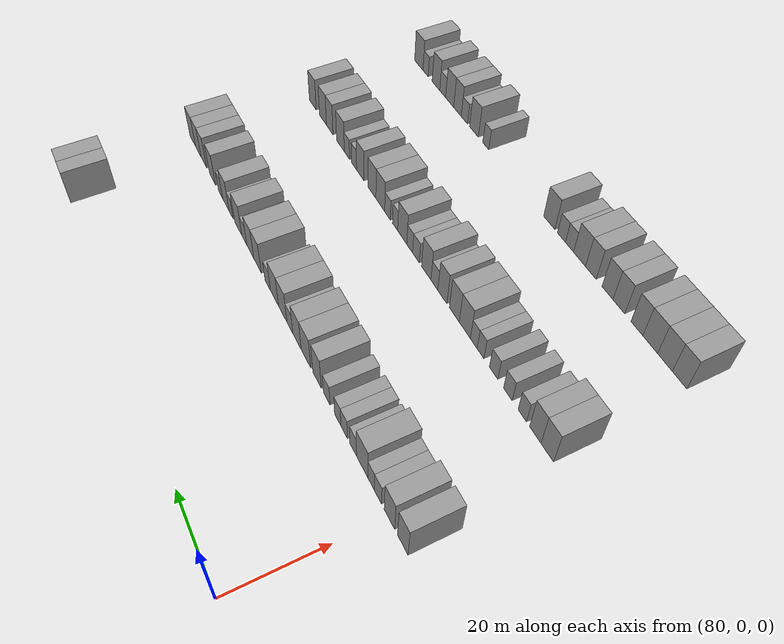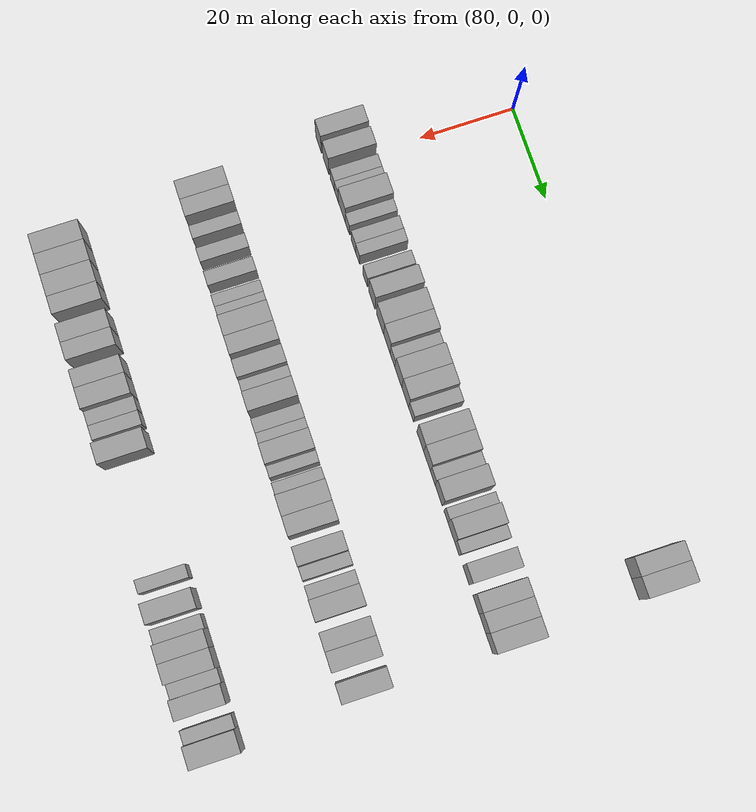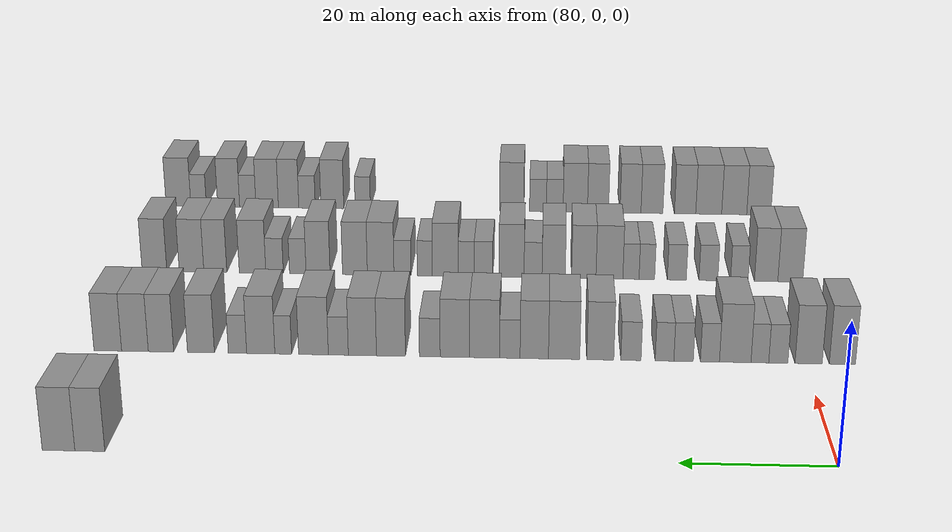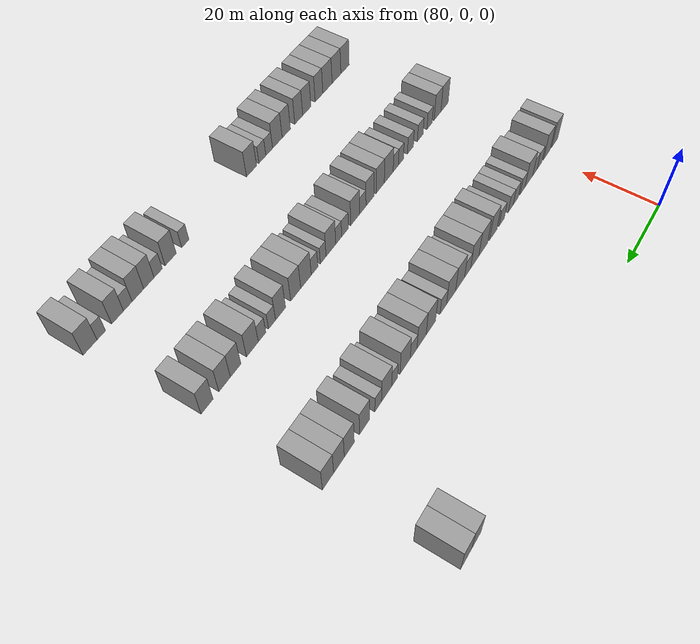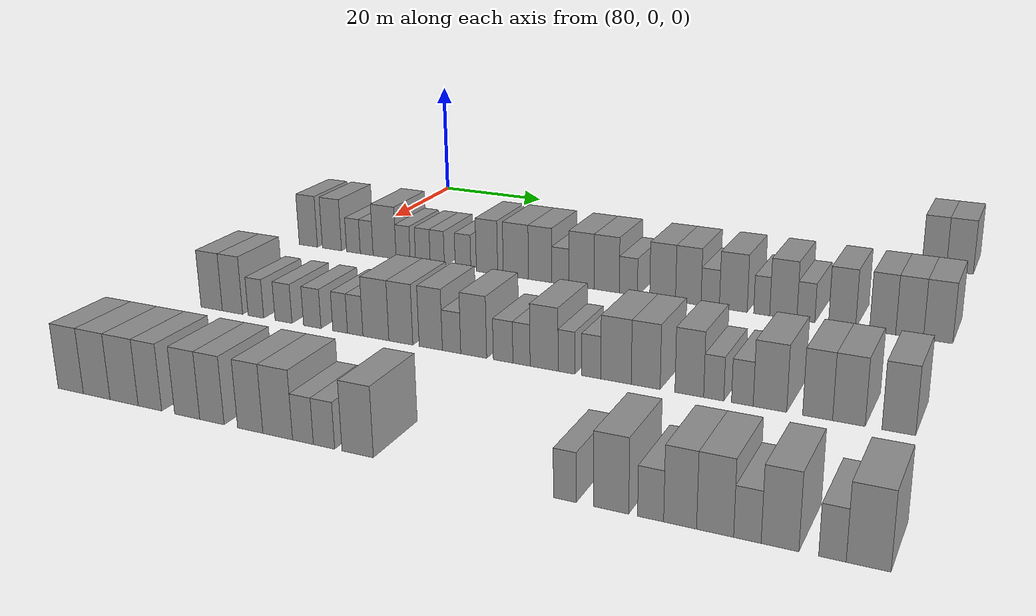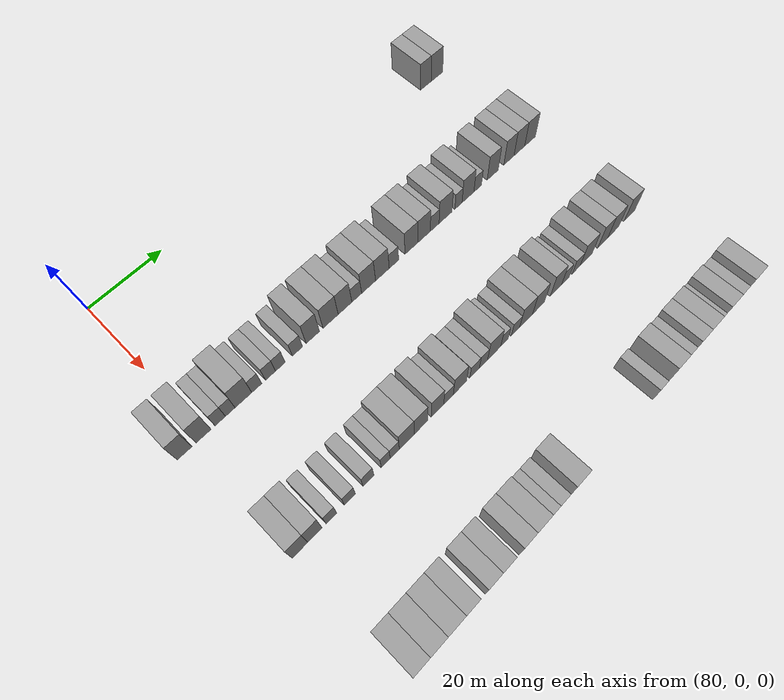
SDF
<sdf version="1.6">
 <world name="default">
  <model name="building_588">
   <static>1</static>
   <pose>85.0000 94.9710 0 0.000000 0.000000 0.000000</pose>
   <link name="link">
    <pose>0 0 4.50 0 0 0</pose>
    <collision name="collision"><geometry><box><size>10.0000 3.8599 9.0000</size></box></geometry></collision>
    <visual name="visual">
     <cast_shadows>0</cast_shadows>
     <geometry><box><size>10.0000 3.8599 9.0000</size></box></geometry>
     <material>
      <script>
       <uri>model://grey_wall/materials/scripts</uri>
       <uri>model://grey_wall/materials/textures</uri>
       <name>vrc/grey_wall</name>
      </script>
     </material>
    </visual>
   </link>
  </model>
  <model name="building_589">
   <static>1</static>
   <pose>85.0000 99.0133 0 0.000000 0.000000 0.000000</pose>
   <link name="link">
    <pose>0 0 4.50 0 0 0</pose>
    <collision name="collision"><geometry><box><size>10.0000 4.2247 9.0000</size></box></geometry></collision>
    <visual name="visual">
     <cast_shadows>0</cast_shadows>
     <geometry><box><size>10.0000 4.2247 9.0000</size></box></geometry>
     <material>
      <script>
       <uri>model://grey_wall/materials/scripts</uri>
       <uri>model://grey_wall/materials/textures</uri>
       <name>vrc/grey_wall</name>
      </script>
     </material>
    </visual>
   </link>
  </model>
  <model name="building_783">
   <static>1</static>
   <pose>115.0000 -5.1531 0 0.000000 0.000000 0.000000</pose>
   <link name="link">
    <pose>0 0 4.50 0 0 0</pose>
    <collision name="collision"><geometry><box><size>10.0000 3.6829 9.0000</size></box></geometry></collision>
    <visual name="visual">
     <cast_shadows>0</cast_shadows>
     <geometry><box><size>10.0000 3.6829 9.0000</size></box></geometry>
     <material>
      <script>
       <uri>model://grey_wall/materials/scripts</uri>
       <uri>model://grey_wall/materials/textures</uri>
       <name>vrc/grey_wall</name>
      </script>
     </material>
    </visual>
   </link>
  </model>
  <model name="building_784">
   <static>1</static>
   <pose>115.0000 -0.3969 0 0.000000 0.000000 0.000000</pose>
   <link name="link">
    <pose>0 0 4.50 0 0 0</pose>
    <collision name="collision"><geometry><box><size>10.0000 3.8297 9.0000</size></box></geometry></collision>
    <visual name="visual">
     <cast_shadows>0</cast_shadows>
     <geometry><box><size>10.0000 3.8297 9.0000</size></box></geometry>
     <material>
      <script>
       <uri>model://grey_wall/materials/scripts</uri>
       <uri>model://grey_wall/materials/textures</uri>
       <name>vrc/grey_wall</name>
      </script>
     </material>
    </visual>
   </link>
  </model>
  <model name="building_785">
   <static>1</static>
   <pose>115.0000 3.8708 0 0.000000 0.000000 0.000000</pose>
   <link name="link">
    <pose>0 0 3.00 0 0 0</pose>
    <collision name="collision"><geometry><box><size>10.0000 2.7057 6.0000</size></box></geometry></collision>
    <visual name="visual">
     <cast_shadows>0</cast_shadows>
     <geometry><box><size>10.0000 2.7057 6.0000</size></box></geometry>
     <material>
      <script>
       <uri>model://grey_wall/materials/scripts</uri>
       <uri>model://grey_wall/materials/textures</uri>
       <name>vrc/grey_wall</name>
      </script>
     </material>
    </visual>
   </link>
  </model>
  <model name="building_786">
   <static>1</static>
   <pose>115.0000 6.4735 0 0.000000 0.000000 0.000000</pose>
   <link name="link">
    <pose>0 0 3.00 0 0 0</pose>
    <collision name="collision"><geometry><box><size>10.0000 2.4996 6.0000</size></box></geometry></collision>
    <visual name="visual">
     <cast_shadows>0</cast_shadows>
     <geometry><box><size>10.0000 2.4996 6.0000</size></box></geometry>
     <material>
      <script>
       <uri>model://grey_wall/materials/scripts</uri>
       <uri>model://grey_wall/materials/textures</uri>
       <name>vrc/grey_wall</name>
      </script>
     </material>
    </visual>
   </link>
  </model>
  <model name="building_787">
   <static>1</static>
   <pose>115.0000 9.9530 0 0.000000 0.000000 0.000000</pose>
   <link name="link">
    <pose>0 0 4.50 0 0 0</pose>
    <collision name="collision"><geometry><box><size>10.0000 4.4594 9.0000</size></box></geometry></collision>
    <visual name="visual">
     <cast_shadows>0</cast_shadows>
     <geometry><box><size>10.0000 4.4594 9.0000</size></box></geometry>
     <material>
      <script>
       <uri>model://grey_wall/materials/scripts</uri>
       <uri>model://grey_wall/materials/textures</uri>
       <name>vrc/grey_wall</name>
      </script>
     </material>
    </visual>
   </link>
  </model>
  <model name="building_788">
   <static>1</static>
   <pose>115.0000 13.5295 0 0.000000 0.000000 0.000000</pose>
   <link name="link">
    <pose>0 0 3.00 0 0 0</pose>
    <collision name="collision"><geometry><box><size>10.0000 2.6935 6.0000</size></box></geometry></collision>
    <visual name="visual">
     <cast_shadows>0</cast_shadows>
     <geometry><box><size>10.0000 2.6935 6.0000</size></box></geometry>
     <material>
      <script>
       <uri>model://grey_wall/materials/scripts</uri>
       <uri>model://grey_wall/materials/textures</uri>
       <name>vrc/grey_wall</name>
      </script>
     </material>
    </visual>
   </link>
  </model>
  <model name="building_789">
   <static>1</static>
   <pose>115.0000 17.2553 0 0.000000 0.000000 0.000000</pose>
   <link name="link">
    <pose>0 0 3.00 0 0 0</pose>
    <collision name="collision"><geometry><box><size>10.0000 2.7581 6.0000</size></box></geometry></collision>
    <visual name="visual">
     <cast_shadows>0</cast_shadows>
     <geometry><box><size>10.0000 2.7581 6.0000</size></box></geometry>
     <material>
      <script>
       <uri>model://grey_wall/materials/scripts</uri>
       <uri>model://grey_wall/materials/textures</uri>
       <name>vrc/grey_wall</name>
      </script>
     </material>
    </visual>
   </link>
  </model>
  <model name="building_790">
   <static>1</static>
   <pose>115.0000 19.9574 0 0.000000 0.000000 0.000000</pose>
   <link name="link">
    <pose>0 0 3.00 0 0 0</pose>
    <collision name="collision"><geometry><box><size>10.0000 2.6461 6.0000</size></box></geometry></collision>
    <visual name="visual">
     <cast_shadows>0</cast_shadows>
     <geometry><box><size>10.0000 2.6461 6.0000</size></box></geometry>
     <material>
      <script>
       <uri>model://grey_wall/materials/scripts</uri>
       <uri>model://grey_wall/materials/textures</uri>
       <name>vrc/grey_wall</name>
      </script>
     </material>
    </visual>
   </link>
  </model>
  <model name="building_791">
   <static>1</static>
   <pose>115.0000 24.7151 0 0.000000 0.000000 0.000000</pose>
   <link name="link">
    <pose>0 0 3.00 0 0 0</pose>
    <collision name="collision"><geometry><box><size>10.0000 2.8693 6.0000</size></box></geometry></collision>
    <visual name="visual">
     <cast_shadows>0</cast_shadows>
     <geometry><box><size>10.0000 2.8693 6.0000</size></box></geometry>
     <material>
      <script>
       <uri>model://grey_wall/materials/scripts</uri>
       <uri>model://grey_wall/materials/textures</uri>
       <name>vrc/grey_wall</name>
      </script>
     </material>
    </visual>
   </link>
  </model>
  <model name="building_792">
   <static>1</static>
   <pose>115.0000 29.0705 0 0.000000 0.000000 0.000000</pose>
   <link name="link">
    <pose>0 0 4.50 0 0 0</pose>
    <collision name="collision"><geometry><box><size>10.0000 3.8414 9.0000</size></box></geometry></collision>
    <visual name="visual">
     <cast_shadows>0</cast_shadows>
     <geometry><box><size>10.0000 3.8414 9.0000</size></box></geometry>
     <material>
      <script>
       <uri>model://grey_wall/materials/scripts</uri>
       <uri>model://grey_wall/materials/textures</uri>
       <name>vrc/grey_wall</name>
      </script>
     </material>
    </visual>
   </link>
  </model>
  <model name="building_793">
   <static>1</static>
   <pose>115.0000 34.2207 0 0.000000 0.000000 0.000000</pose>
   <link name="link">
    <pose>0 0 4.50 0 0 0</pose>
    <collision name="collision"><geometry><box><size>10.0000 4.4589 9.0000</size></box></geometry></collision>
    <visual name="visual">
     <cast_shadows>0</cast_shadows>
     <geometry><box><size>10.0000 4.4589 9.0000</size></box></geometry>
     <material>
      <script>
       <uri>model://grey_wall/materials/scripts</uri>
       <uri>model://grey_wall/materials/textures</uri>
       <name>vrc/grey_wall</name>
      </script>
     </material>
    </visual>
   </link>
  </model>
  <model name="building_794">
   <static>1</static>
   <pose>115.0000 38.4726 0 0.000000 0.000000 0.000000</pose>
   <link name="link">
    <pose>0 0 4.50 0 0 0</pose>
    <collision name="collision"><geometry><box><size>10.0000 4.0450 9.0000</size></box></geometry></collision>
    <visual name="visual">
     <cast_shadows>0</cast_shadows>
     <geometry><box><size>10.0000 4.0450 9.0000</size></box></geometry>
     <material>
      <script>
       <uri>model://grey_wall/materials/scripts</uri>
       <uri>model://grey_wall/materials/textures</uri>
       <name>vrc/grey_wall</name>
      </script>
     </material>
    </visual>
   </link>
  </model>
  <model name="building_795">
   <static>1</static>
   <pose>115.0000 41.9657 0 0.000000 0.000000 0.000000</pose>
   <link name="link">
    <pose>0 0 3.00 0 0 0</pose>
    <collision name="collision"><geometry><box><size>10.0000 2.9412 6.0000</size></box></geometry></collision>
    <visual name="visual">
     <cast_shadows>0</cast_shadows>
     <geometry><box><size>10.0000 2.9412 6.0000</size></box></geometry>
     <material>
      <script>
       <uri>model://grey_wall/materials/scripts</uri>
       <uri>model://grey_wall/materials/textures</uri>
       <name>vrc/grey_wall</name>
      </script>
     </material>
    </visual>
   </link>
  </model>
  <model name="building_796">
   <static>1</static>
   <pose>115.0000 45.5655 0 0.000000 0.000000 0.000000</pose>
   <link name="link">
    <pose>0 0 4.50 0 0 0</pose>
    <collision name="collision"><geometry><box><size>10.0000 4.2584 9.0000</size></box></geometry></collision>
    <visual name="visual">
     <cast_shadows>0</cast_shadows>
     <geometry><box><size>10.0000 4.2584 9.0000</size></box></geometry>
     <material>
      <script>
       <uri>model://grey_wall/materials/scripts</uri>
       <uri>model://grey_wall/materials/textures</uri>
       <name>vrc/grey_wall</name>
      </script>
     </material>
    </visual>
   </link>
  </model>
  <model name="building_797">
   <static>1</static>
   <pose>115.0000 49.8046 0 0.000000 0.000000 0.000000</pose>
   <link name="link">
    <pose>0 0 4.50 0 0 0</pose>
    <collision name="collision"><geometry><box><size>10.0000 4.2198 9.0000</size></box></geometry></collision>
    <visual name="visual">
     <cast_shadows>0</cast_shadows>
     <geometry><box><size>10.0000 4.2198 9.0000</size></box></geometry>
     <material>
      <script>
       <uri>model://grey_wall/materials/scripts</uri>
       <uri>model://grey_wall/materials/textures</uri>
       <name>vrc/grey_wall</name>
      </script>
     </material>
    </visual>
   </link>
  </model>
  <model name="building_798">
   <static>1</static>
   <pose>115.0000 53.4021 0 0.000000 0.000000 0.000000</pose>
   <link name="link">
    <pose>0 0 3.00 0 0 0</pose>
    <collision name="collision"><geometry><box><size>10.0000 2.9750 6.0000</size></box></geometry></collision>
    <visual name="visual">
     <cast_shadows>0</cast_shadows>
     <geometry><box><size>10.0000 2.9750 6.0000</size></box></geometry>
     <material>
      <script>
       <uri>model://grey_wall/materials/scripts</uri>
       <uri>model://grey_wall/materials/textures</uri>
       <name>vrc/grey_wall</name>
      </script>
     </material>
    </visual>
   </link>
  </model>
  <model name="building_799">
   <static>1</static>
   <pose>115.0000 58.9686 0 0.000000 0.000000 0.000000</pose>
   <link name="link">
    <pose>0 0 4.50 0 0 0</pose>
    <collision name="collision"><geometry><box><size>10.0000 4.1580 9.0000</size></box></geometry></collision>
    <visual name="visual">
     <cast_shadows>0</cast_shadows>
     <geometry><box><size>10.0000 4.1580 9.0000</size></box></geometry>
     <material>
      <script>
       <uri>model://grey_wall/materials/scripts</uri>
       <uri>model://grey_wall/materials/textures</uri>
       <name>vrc/grey_wall</name>
      </script>
     </material>
    </visual>
   </link>
  </model>
  <model name="building_800">
   <static>1</static>
   <pose>115.0000 63.0670 0 0.000000 0.000000 0.000000</pose>
   <link name="link">
    <pose>0 0 4.50 0 0 0</pose>
    <collision name="collision"><geometry><box><size>10.0000 4.0387 9.0000</size></box></geometry></collision>
    <visual name="visual">
     <cast_shadows>0</cast_shadows>
     <geometry><box><size>10.0000 4.0387 9.0000</size></box></geometry>
     <material>
      <script>
       <uri>model://grey_wall/materials/scripts</uri>
       <uri>model://grey_wall/materials/textures</uri>
       <name>vrc/grey_wall</name>
      </script>
     </material>
    </visual>
   </link>
  </model>
  <model name="building_801">
   <static>1</static>
   <pose>115.0000 66.5256 0 0.000000 0.000000 0.000000</pose>
   <link name="link">
    <pose>0 0 3.00 0 0 0</pose>
    <collision name="collision"><geometry><box><size>10.0000 2.8786 6.0000</size></box></geometry></collision>
    <visual name="visual">
     <cast_shadows>0</cast_shadows>
     <geometry><box><size>10.0000 2.8786 6.0000</size></box></geometry>
     <material>
      <script>
       <uri>model://grey_wall/materials/scripts</uri>
       <uri>model://grey_wall/materials/textures</uri>
       <name>vrc/grey_wall</name>
      </script>
     </material>
    </visual>
   </link>
  </model>
  <model name="building_802">
   <static>1</static>
   <pose>115.0000 70.1069 0 0.000000 0.000000 0.000000</pose>
   <link name="link">
    <pose>0 0 4.50 0 0 0</pose>
    <collision name="collision"><geometry><box><size>10.0000 4.2840 9.0000</size></box></geometry></collision>
    <visual name="visual">
     <cast_shadows>0</cast_shadows>
     <geometry><box><size>10.0000 4.2840 9.0000</size></box></geometry>
     <material>
      <script>
       <uri>model://grey_wall/materials/scripts</uri>
       <uri>model://grey_wall/materials/textures</uri>
       <name>vrc/grey_wall</name>
      </script>
     </material>
    </visual>
   </link>
  </model>
  <model name="building_803">
   <static>1</static>
   <pose>115.0000 74.4590 0 0.000000 0.000000 0.000000</pose>
   <link name="link">
    <pose>0 0 3.00 0 0 0</pose>
    <collision name="collision"><geometry><box><size>10.0000 2.4203 6.0000</size></box></geometry></collision>
    <visual name="visual">
     <cast_shadows>0</cast_shadows>
     <geometry><box><size>10.0000 2.4203 6.0000</size></box></geometry>
     <material>
      <script>
       <uri>model://grey_wall/materials/scripts</uri>
       <uri>model://grey_wall/materials/textures</uri>
       <name>vrc/grey_wall</name>
      </script>
     </material>
    </visual>
   </link>
  </model>
  <model name="building_804">
   <static>1</static>
   <pose>115.0000 77.7041 0 0.000000 0.000000 0.000000</pose>
   <link name="link">
    <pose>0 0 4.50 0 0 0</pose>
    <collision name="collision"><geometry><box><size>10.0000 4.0697 9.0000</size></box></geometry></collision>
    <visual name="visual">
     <cast_shadows>0</cast_shadows>
     <geometry><box><size>10.0000 4.0697 9.0000</size></box></geometry>
     <material>
      <script>
       <uri>model://grey_wall/materials/scripts</uri>
       <uri>model://grey_wall/materials/textures</uri>
       <name>vrc/grey_wall</name>
      </script>
     </material>
    </visual>
   </link>
  </model>
  <model name="building_805">
   <static>1</static>
   <pose>115.0000 81.0676 0 0.000000 0.000000 0.000000</pose>
   <link name="link">
    <pose>0 0 3.00 0 0 0</pose>
    <collision name="collision"><geometry><box><size>10.0000 2.6573 6.0000</size></box></geometry></collision>
    <visual name="visual">
     <cast_shadows>0</cast_shadows>
     <geometry><box><size>10.0000 2.6573 6.0000</size></box></geometry>
     <material>
      <script>
       <uri>model://grey_wall/materials/scripts</uri>
       <uri>model://grey_wall/materials/textures</uri>
       <name>vrc/grey_wall</name>
      </script>
     </material>
    </visual>
   </link>
  </model>
  <model name="building_806">
   <static>1</static>
   <pose>115.0000 86.3483 0 0.000000 0.000000 0.000000</pose>
   <link name="link">
    <pose>0 0 4.50 0 0 0</pose>
    <collision name="collision"><geometry><box><size>10.0000 3.9041 9.0000</size></box></geometry></collision>
    <visual name="visual">
     <cast_shadows>0</cast_shadows>
     <geometry><box><size>10.0000 3.9041 9.0000</size></box></geometry>
     <material>
      <script>
       <uri>model://grey_wall/materials/scripts</uri>
       <uri>model://grey_wall/materials/textures</uri>
       <name>vrc/grey_wall</name>
      </script>
     </material>
    </visual>
   </link>
  </model>
  <model name="building_807">
   <static>1</static>
   <pose>115.0000 92.1414 0 0.000000 0.000000 0.000000</pose>
   <link name="link">
    <pose>0 0 4.50 0 0 0</pose>
    <collision name="collision"><geometry><box><size>10.0000 3.6822 9.0000</size></box></geometry></collision>
    <visual name="visual">
     <cast_shadows>0</cast_shadows>
     <geometry><box><size>10.0000 3.6822 9.0000</size></box></geometry>
     <material>
      <script>
       <uri>model://grey_wall/materials/scripts</uri>
       <uri>model://grey_wall/materials/textures</uri>
       <name>vrc/grey_wall</name>
      </script>
     </material>
    </visual>
   </link>
  </model>
  <model name="building_808">
   <static>1</static>
   <pose>115.0000 95.9185 0 0.000000 0.000000 0.000000</pose>
   <link name="link">
    <pose>0 0 4.50 0 0 0</pose>
    <collision name="collision"><geometry><box><size>10.0000 3.8719 9.0000</size></box></geometry></collision>
    <visual name="visual">
     <cast_shadows>0</cast_shadows>
     <geometry><box><size>10.0000 3.8719 9.0000</size></box></geometry>
     <material>
      <script>
       <uri>model://grey_wall/materials/scripts</uri>
       <uri>model://grey_wall/materials/textures</uri>
       <name>vrc/grey_wall</name>
      </script>
     </material>
    </visual>
   </link>
  </model>
  <model name="building_809">
   <static>1</static>
   <pose>115.0000 99.8624 0 0.000000 0.000000 0.000000</pose>
   <link name="link">
    <pose>0 0 4.50 0 0 0</pose>
    <collision name="collision"><geometry><box><size>10.0000 4.0159 9.0000</size></box></geometry></collision>
    <visual name="visual">
     <cast_shadows>0</cast_shadows>
     <geometry><box><size>10.0000 4.0159 9.0000</size></box></geometry>
     <material>
      <script>
       <uri>model://grey_wall/materials/scripts</uri>
       <uri>model://grey_wall/materials/textures</uri>
       <name>vrc/grey_wall</name>
      </script>
     </material>
    </visual>
   </link>
  </model>
  <model name="building_1006">
   <static>1</static>
   <pose>145.0000 -1.6633 0 0.000000 0.000000 0.000000</pose>
   <link name="link">
    <pose>0 0 4.50 0 0 0</pose>
    <collision name="collision"><geometry><box><size>10.0000 3.9055 9.0000</size></box></geometry></collision>
    <visual name="visual">
     <cast_shadows>0</cast_shadows>
     <geometry><box><size>10.0000 3.9055 9.0000</size></box></geometry>
     <material>
      <script>
       <uri>model://grey_wall/materials/scripts</uri>
       <uri>model://grey_wall/materials/textures</uri>
       <name>vrc/grey_wall</name>
      </script>
     </material>
    </visual>
   </link>
  </model>
  <model name="building_1007">
   <static>1</static>
   <pose>145.0000 2.1236 0 0.000000 0.000000 0.000000</pose>
   <link name="link">
    <pose>0 0 4.50 0 0 0</pose>
    <collision name="collision"><geometry><box><size>10.0000 3.6683 9.0000</size></box></geometry></collision>
    <visual name="visual">
     <cast_shadows>0</cast_shadows>
     <geometry><box><size>10.0000 3.6683 9.0000</size></box></geometry>
     <material>
      <script>
       <uri>model://grey_wall/materials/scripts</uri>
       <uri>model://grey_wall/materials/textures</uri>
       <name>vrc/grey_wall</name>
      </script>
     </material>
    </visual>
   </link>
  </model>
  <model name="building_1008">
   <static>1</static>
   <pose>145.0000 6.3409 0 0.000000 0.000000 0.000000</pose>
   <link name="link">
    <pose>0 0 3.00 0 0 0</pose>
    <collision name="collision"><geometry><box><size>10.0000 2.7663 6.0000</size></box></geometry></collision>
    <visual name="visual">
     <cast_shadows>0</cast_shadows>
     <geometry><box><size>10.0000 2.7663 6.0000</size></box></geometry>
     <material>
      <script>
       <uri>model://grey_wall/materials/scripts</uri>
       <uri>model://grey_wall/materials/textures</uri>
       <name>vrc/grey_wall</name>
      </script>
     </material>
    </visual>
   </link>
  </model>
  <model name="building_1009">
   <static>1</static>
   <pose>145.0000 11.2041 0 0.000000 0.000000 0.000000</pose>
   <link name="link">
    <pose>0 0 3.00 0 0 0</pose>
    <collision name="collision"><geometry><box><size>10.0000 2.9601 6.0000</size></box></geometry></collision>
    <visual name="visual">
     <cast_shadows>0</cast_shadows>
     <geometry><box><size>10.0000 2.9601 6.0000</size></box></geometry>
     <material>
      <script>
       <uri>model://grey_wall/materials/scripts</uri>
       <uri>model://grey_wall/materials/textures</uri>
       <name>vrc/grey_wall</name>
      </script>
     </material>
    </visual>
   </link>
  </model>
  <model name="building_1010">
   <static>1</static>
   <pose>145.0000 16.1800 0 0.000000 0.000000 0.000000</pose>
   <link name="link">
    <pose>0 0 3.00 0 0 0</pose>
    <collision name="collision"><geometry><box><size>10.0000 2.9919 6.0000</size></box></geometry></collision>
    <visual name="visual">
     <cast_shadows>0</cast_shadows>
     <geometry><box><size>10.0000 2.9919 6.0000</size></box></geometry>
     <material>
      <script>
       <uri>model://grey_wall/materials/scripts</uri>
       <uri>model://grey_wall/materials/textures</uri>
       <name>vrc/grey_wall</name>
      </script>
     </material>
    </visual>
   </link>
  </model>
  <model name="building_1011">
   <static>1</static>
   <pose>145.0000 20.9081 0 0.000000 0.000000 0.000000</pose>
   <link name="link">
    <pose>0 0 3.00 0 0 0</pose>
    <collision name="collision"><geometry><box><size>10.0000 2.4642 6.0000</size></box></geometry></collision>
    <visual name="visual">
     <cast_shadows>0</cast_shadows>
     <geometry><box><size>10.0000 2.4642 6.0000</size></box></geometry>
     <material>
      <script>
       <uri>model://grey_wall/materials/scripts</uri>
       <uri>model://grey_wall/materials/textures</uri>
       <name>vrc/grey_wall</name>
      </script>
     </material>
    </visual>
   </link>
  </model>
  <model name="building_1012">
   <static>1</static>
   <pose>145.0000 23.4206 0 0.000000 0.000000 0.000000</pose>
   <link name="link">
    <pose>0 0 3.00 0 0 0</pose>
    <collision name="collision"><geometry><box><size>10.0000 2.5610 6.0000</size></box></geometry></collision>
    <visual name="visual">
     <cast_shadows>0</cast_shadows>
     <geometry><box><size>10.0000 2.5610 6.0000</size></box></geometry>
     <material>
      <script>
       <uri>model://grey_wall/materials/scripts</uri>
       <uri>model://grey_wall/materials/textures</uri>
       <name>vrc/grey_wall</name>
      </script>
     </material>
    </visual>
   </link>
  </model>
  <model name="building_1013">
   <static>1</static>
   <pose>145.0000 26.8271 0 0.000000 0.000000 0.000000</pose>
   <link name="link">
    <pose>0 0 4.50 0 0 0</pose>
    <collision name="collision"><geometry><box><size>10.0000 4.2521 9.0000</size></box></geometry></collision>
    <visual name="visual">
     <cast_shadows>0</cast_shadows>
     <geometry><box><size>10.0000 4.2521 9.0000</size></box></geometry>
     <material>
      <script>
       <uri>model://grey_wall/materials/scripts</uri>
       <uri>model://grey_wall/materials/textures</uri>
       <name>vrc/grey_wall</name>
      </script>
     </material>
    </visual>
   </link>
  </model>
  <model name="building_1014">
   <static>1</static>
   <pose>145.0000 30.8858 0 0.000000 0.000000 0.000000</pose>
   <link name="link">
    <pose>0 0 4.50 0 0 0</pose>
    <collision name="collision"><geometry><box><size>10.0000 3.8653 9.0000</size></box></geometry></collision>
    <visual name="visual">
     <cast_shadows>0</cast_shadows>
     <geometry><box><size>10.0000 3.8653 9.0000</size></box></geometry>
     <material>
      <script>
       <uri>model://grey_wall/materials/scripts</uri>
       <uri>model://grey_wall/materials/textures</uri>
       <name>vrc/grey_wall</name>
      </script>
     </material>
    </visual>
   </link>
  </model>
  <model name="building_1015">
   <static>1</static>
   <pose>145.0000 35.6564 0 0.000000 0.000000 0.000000</pose>
   <link name="link">
    <pose>0 0 4.50 0 0 0</pose>
    <collision name="collision"><geometry><box><size>10.0000 3.6758 9.0000</size></box></geometry></collision>
    <visual name="visual">
     <cast_shadows>0</cast_shadows>
     <geometry><box><size>10.0000 3.6758 9.0000</size></box></geometry>
     <material>
      <script>
       <uri>model://grey_wall/materials/scripts</uri>
       <uri>model://grey_wall/materials/textures</uri>
       <name>vrc/grey_wall</name>
      </script>
     </material>
    </visual>
   </link>
  </model>
  <model name="building_1016">
   <static>1</static>
   <pose>145.0000 38.9249 0 0.000000 0.000000 0.000000</pose>
   <link name="link">
    <pose>0 0 3.00 0 0 0</pose>
    <collision name="collision"><geometry><box><size>10.0000 2.8613 6.0000</size></box></geometry></collision>
    <visual name="visual">
     <cast_shadows>0</cast_shadows>
     <geometry><box><size>10.0000 2.8613 6.0000</size></box></geometry>
     <material>
      <script>
       <uri>model://grey_wall/materials/scripts</uri>
       <uri>model://grey_wall/materials/textures</uri>
       <name>vrc/grey_wall</name>
      </script>
     </material>
    </visual>
   </link>
  </model>
  <model name="building_1017">
   <static>1</static>
   <pose>145.0000 42.3459 0 0.000000 0.000000 0.000000</pose>
   <link name="link">
    <pose>0 0 4.50 0 0 0</pose>
    <collision name="collision"><geometry><box><size>10.0000 3.9807 9.0000</size></box></geometry></collision>
    <visual name="visual">
     <cast_shadows>0</cast_shadows>
     <geometry><box><size>10.0000 3.9807 9.0000</size></box></geometry>
     <material>
      <script>
       <uri>model://grey_wall/materials/scripts</uri>
       <uri>model://grey_wall/materials/textures</uri>
       <name>vrc/grey_wall</name>
      </script>
     </material>
    </visual>
   </link>
  </model>
  <model name="building_1018">
   <static>1</static>
   <pose>145.0000 46.8106 0 0.000000 0.000000 0.000000</pose>
   <link name="link">
    <pose>0 0 3.00 0 0 0</pose>
    <collision name="collision"><geometry><box><size>10.0000 2.9487 6.0000</size></box></geometry></collision>
    <visual name="visual">
     <cast_shadows>0</cast_shadows>
     <geometry><box><size>10.0000 2.9487 6.0000</size></box></geometry>
     <material>
      <script>
       <uri>model://grey_wall/materials/scripts</uri>
       <uri>model://grey_wall/materials/textures</uri>
       <name>vrc/grey_wall</name>
      </script>
     </material>
    </visual>
   </link>
  </model>
  <model name="building_1019">
   <static>1</static>
   <pose>145.0000 49.5618 0 0.000000 0.000000 0.000000</pose>
   <link name="link">
    <pose>0 0 3.00 0 0 0</pose>
    <collision name="collision"><geometry><box><size>10.0000 2.5536 6.0000</size></box></geometry></collision>
    <visual name="visual">
     <cast_shadows>0</cast_shadows>
     <geometry><box><size>10.0000 2.5536 6.0000</size></box></geometry>
     <material>
      <script>
       <uri>model://grey_wall/materials/scripts</uri>
       <uri>model://grey_wall/materials/textures</uri>
       <name>vrc/grey_wall</name>
      </script>
     </material>
    </visual>
   </link>
  </model>
  <model name="building_1020">
   <static>1</static>
   <pose>145.0000 52.8923 0 0.000000 0.000000 0.000000</pose>
   <link name="link">
    <pose>0 0 4.50 0 0 0</pose>
    <collision name="collision"><geometry><box><size>10.0000 4.1074 9.0000</size></box></geometry></collision>
    <visual name="visual">
     <cast_shadows>0</cast_shadows>
     <geometry><box><size>10.0000 4.1074 9.0000</size></box></geometry>
     <material>
      <script>
       <uri>model://grey_wall/materials/scripts</uri>
       <uri>model://grey_wall/materials/textures</uri>
       <name>vrc/grey_wall</name>
      </script>
     </material>
    </visual>
   </link>
  </model>
  <model name="building_1021">
   <static>1</static>
   <pose>145.0000 56.1477 0 0.000000 0.000000 0.000000</pose>
   <link name="link">
    <pose>0 0 3.00 0 0 0</pose>
    <collision name="collision"><geometry><box><size>10.0000 2.4034 6.0000</size></box></geometry></collision>
    <visual name="visual">
     <cast_shadows>0</cast_shadows>
     <geometry><box><size>10.0000 2.4034 6.0000</size></box></geometry>
     <material>
      <script>
       <uri>model://grey_wall/materials/scripts</uri>
       <uri>model://grey_wall/materials/textures</uri>
       <name>vrc/grey_wall</name>
      </script>
     </material>
    </visual>
   </link>
  </model>
  <model name="building_1022">
   <static>1</static>
   <pose>145.0000 59.7065 0 0.000000 0.000000 0.000000</pose>
   <link name="link">
    <pose>0 0 3.00 0 0 0</pose>
    <collision name="collision"><geometry><box><size>10.0000 2.7140 6.0000</size></box></geometry></collision>
    <visual name="visual">
     <cast_shadows>0</cast_shadows>
     <geometry><box><size>10.0000 2.7140 6.0000</size></box></geometry>
     <material>
      <script>
       <uri>model://grey_wall/materials/scripts</uri>
       <uri>model://grey_wall/materials/textures</uri>
       <name>vrc/grey_wall</name>
      </script>
     </material>
    </visual>
   </link>
  </model>
  <model name="building_1023">
   <static>1</static>
   <pose>145.0000 63.1895 0 0.000000 0.000000 0.000000</pose>
   <link name="link">
    <pose>0 0 4.50 0 0 0</pose>
    <collision name="collision"><geometry><box><size>10.0000 4.2520 9.0000</size></box></geometry></collision>
    <visual name="visual">
     <cast_shadows>0</cast_shadows>
     <geometry><box><size>10.0000 4.2520 9.0000</size></box></geometry>
     <material>
      <script>
       <uri>model://grey_wall/materials/scripts</uri>
       <uri>model://grey_wall/materials/textures</uri>
       <name>vrc/grey_wall</name>
      </script>
     </material>
    </visual>
   </link>
  </model>
  <model name="building_1024">
   <static>1</static>
   <pose>145.0000 67.3016 0 0.000000 0.000000 0.000000</pose>
   <link name="link">
    <pose>0 0 4.50 0 0 0</pose>
    <collision name="collision"><geometry><box><size>10.0000 3.9723 9.0000</size></box></geometry></collision>
    <visual name="visual">
     <cast_shadows>0</cast_shadows>
     <geometry><box><size>10.0000 3.9723 9.0000</size></box></geometry>
     <material>
      <script>
       <uri>model://grey_wall/materials/scripts</uri>
       <uri>model://grey_wall/materials/textures</uri>
       <name>vrc/grey_wall</name>
      </script>
     </material>
    </visual>
   </link>
  </model>
  <model name="building_1025">
   <static>1</static>
   <pose>145.0000 73.2077 0 0.000000 0.000000 0.000000</pose>
   <link name="link">
    <pose>0 0 4.50 0 0 0</pose>
    <collision name="collision"><geometry><box><size>10.0000 3.8399 9.0000</size></box></geometry></collision>
    <visual name="visual">
     <cast_shadows>0</cast_shadows>
     <geometry><box><size>10.0000 3.8399 9.0000</size></box></geometry>
     <material>
      <script>
       <uri>model://grey_wall/materials/scripts</uri>
       <uri>model://grey_wall/materials/textures</uri>
       <name>vrc/grey_wall</name>
      </script>
     </material>
    </visual>
   </link>
  </model>
  <model name="building_1026">
   <static>1</static>
   <pose>145.0000 76.4553 0 0.000000 0.000000 0.000000</pose>
   <link name="link">
    <pose>0 0 3.00 0 0 0</pose>
    <collision name="collision"><geometry><box><size>10.0000 2.6553 6.0000</size></box></geometry></collision>
    <visual name="visual">
     <cast_shadows>0</cast_shadows>
     <geometry><box><size>10.0000 2.6553 6.0000</size></box></geometry>
     <material>
      <script>
       <uri>model://grey_wall/materials/scripts</uri>
       <uri>model://grey_wall/materials/textures</uri>
       <name>vrc/grey_wall</name>
      </script>
     </material>
    </visual>
   </link>
  </model>
  <model name="building_1027">
   <static>1</static>
   <pose>145.0000 80.1863 0 0.000000 0.000000 0.000000</pose>
   <link name="link">
    <pose>0 0 3.00 0 0 0</pose>
    <collision name="collision"><geometry><box><size>10.0000 2.8067 6.0000</size></box></geometry></collision>
    <visual name="visual">
     <cast_shadows>0</cast_shadows>
     <geometry><box><size>10.0000 2.8067 6.0000</size></box></geometry>
     <material>
      <script>
       <uri>model://grey_wall/materials/scripts</uri>
       <uri>model://grey_wall/materials/textures</uri>
       <name>vrc/grey_wall</name>
      </script>
     </material>
    </visual>
   </link>
  </model>
  <model name="building_1028">
   <static>1</static>
   <pose>145.0000 83.7250 0 0.000000 0.000000 0.000000</pose>
   <link name="link">
    <pose>0 0 4.50 0 0 0</pose>
    <collision name="collision"><geometry><box><size>10.0000 4.2707 9.0000</size></box></geometry></collision>
    <visual name="visual">
     <cast_shadows>0</cast_shadows>
     <geometry><box><size>10.0000 4.2707 9.0000</size></box></geometry>
     <material>
      <script>
       <uri>model://grey_wall/materials/scripts</uri>
       <uri>model://grey_wall/materials/textures</uri>
       <name>vrc/grey_wall</name>
      </script>
     </material>
    </visual>
   </link>
  </model>
  <model name="building_1029">
   <static>1</static>
   <pose>145.0000 89.7128 0 0.000000 0.000000 0.000000</pose>
   <link name="link">
    <pose>0 0 4.50 0 0 0</pose>
    <collision name="collision"><geometry><box><size>10.0000 3.7047 9.0000</size></box></geometry></collision>
    <visual name="visual">
     <cast_shadows>0</cast_shadows>
     <geometry><box><size>10.0000 3.7047 9.0000</size></box></geometry>
     <material>
      <script>
       <uri>model://grey_wall/materials/scripts</uri>
       <uri>model://grey_wall/materials/textures</uri>
       <name>vrc/grey_wall</name>
      </script>
     </material>
    </visual>
   </link>
  </model>
  <model name="building_1030">
   <static>1</static>
   <pose>145.0000 93.5481 0 0.000000 0.000000 0.000000</pose>
   <link name="link">
    <pose>0 0 4.50 0 0 0</pose>
    <collision name="collision"><geometry><box><size>10.0000 3.9660 9.0000</size></box></geometry></collision>
    <visual name="visual">
     <cast_shadows>0</cast_shadows>
     <geometry><box><size>10.0000 3.9660 9.0000</size></box></geometry>
     <material>
      <script>
       <uri>model://grey_wall/materials/scripts</uri>
       <uri>model://grey_wall/materials/textures</uri>
       <name>vrc/grey_wall</name>
      </script>
     </material>
    </visual>
   </link>
  </model>
  <model name="building_1031">
   <static>1</static>
   <pose>145.0000 99.5264 0 0.000000 0.000000 0.000000</pose>
   <link name="link">
    <pose>0 0 4.50 0 0 0</pose>
    <collision name="collision"><geometry><box><size>10.0000 3.9906 9.0000</size></box></geometry></collision>
    <visual name="visual">
     <cast_shadows>0</cast_shadows>
     <geometry><box><size>10.0000 3.9906 9.0000</size></box></geometry>
     <material>
      <script>
       <uri>model://grey_wall/materials/scripts</uri>
       <uri>model://grey_wall/materials/textures</uri>
       <name>vrc/grey_wall</name>
      </script>
     </material>
    </visual>
   </link>
  </model>
  <model name="building_1235">
   <static>1</static>
   <pose>175.0000 -0.0649 0 0.000000 0.000000 0.000000</pose>
   <link name="link">
    <pose>0 0 4.50 0 0 0</pose>
    <collision name="collision"><geometry><box><size>10.0000 4.1658 9.0000</size></box></geometry></collision>
    <visual name="visual">
     <cast_shadows>0</cast_shadows>
     <geometry><box><size>10.0000 4.1658 9.0000</size></box></geometry>
     <material>
      <script>
       <uri>model://grey_wall/materials/scripts</uri>
       <uri>model://grey_wall/materials/textures</uri>
       <name>vrc/grey_wall</name>
      </script>
     </material>
    </visual>
   </link>
  </model>
  <model name="building_1236">
   <static>1</static>
   <pose>175.0000 4.1920 0 0.000000 0.000000 0.000000</pose>
   <link name="link">
    <pose>0 0 4.50 0 0 0</pose>
    <collision name="collision"><geometry><box><size>10.0000 4.3482 9.0000</size></box></geometry></collision>
    <visual name="visual">
     <cast_shadows>0</cast_shadows>
     <geometry><box><size>10.0000 4.3482 9.0000</size></box></geometry>
     <material>
      <script>
       <uri>model://grey_wall/materials/scripts</uri>
       <uri>model://grey_wall/materials/textures</uri>
       <name>vrc/grey_wall</name>
      </script>
     </material>
    </visual>
   </link>
  </model>
  <model name="building_1237">
   <static>1</static>
   <pose>175.0000 8.6141 0 0.000000 0.000000 0.000000</pose>
   <link name="link">
    <pose>0 0 4.50 0 0 0</pose>
    <collision name="collision"><geometry><box><size>10.0000 4.4960 9.0000</size></box></geometry></collision>
    <visual name="visual">
     <cast_shadows>0</cast_shadows>
     <geometry><box><size>10.0000 4.4960 9.0000</size></box></geometry>
     <material>
      <script>
       <uri>model://grey_wall/materials/scripts</uri>
       <uri>model://grey_wall/materials/textures</uri>
       <name>vrc/grey_wall</name>
      </script>
     </material>
    </visual>
   </link>
  </model>
  <model name="building_1238">
   <static>1</static>
   <pose>175.0000 12.7095 0 0.000000 0.000000 0.000000</pose>
   <link name="link">
    <pose>0 0 4.50 0 0 0</pose>
    <collision name="collision"><geometry><box><size>10.0000 3.6947 9.0000</size></box></geometry></collision>
    <visual name="visual">
     <cast_shadows>0</cast_shadows>
     <geometry><box><size>10.0000 3.6947 9.0000</size></box></geometry>
     <material>
      <script>
       <uri>model://grey_wall/materials/scripts</uri>
       <uri>model://grey_wall/materials/textures</uri>
       <name>vrc/grey_wall</name>
      </script>
     </material>
    </visual>
   </link>
  </model>
  <model name="building_1239">
   <static>1</static>
   <pose>175.0000 18.4709 0 0.000000 0.000000 0.000000</pose>
   <link name="link">
    <pose>0 0 4.50 0 0 0</pose>
    <collision name="collision"><geometry><box><size>10.0000 3.8282 9.0000</size></box></geometry></collision>
    <visual name="visual">
     <cast_shadows>0</cast_shadows>
     <geometry><box><size>10.0000 3.8282 9.0000</size></box></geometry>
     <material>
      <script>
       <uri>model://grey_wall/materials/scripts</uri>
       <uri>model://grey_wall/materials/textures</uri>
       <name>vrc/grey_wall</name>
      </script>
     </material>
    </visual>
   </link>
  </model>
  <model name="building_1240">
   <static>1</static>
   <pose>175.0000 22.2058 0 0.000000 0.000000 0.000000</pose>
   <link name="link">
    <pose>0 0 4.50 0 0 0</pose>
    <collision name="collision"><geometry><box><size>10.0000 3.6416 9.0000</size></box></geometry></collision>
    <visual name="visual">
     <cast_shadows>0</cast_shadows>
     <geometry><box><size>10.0000 3.6416 9.0000</size></box></geometry>
     <material>
      <script>
       <uri>model://grey_wall/materials/scripts</uri>
       <uri>model://grey_wall/materials/textures</uri>
       <name>vrc/grey_wall</name>
      </script>
     </material>
    </visual>
   </link>
  </model>
  <model name="building_1241">
   <static>1</static>
   <pose>175.0000 27.8663 0 0.000000 0.000000 0.000000</pose>
   <link name="link">
    <pose>0 0 4.50 0 0 0</pose>
    <collision name="collision"><geometry><box><size>10.0000 3.6793 9.0000</size></box></geometry></collision>
    <visual name="visual">
     <cast_shadows>0</cast_shadows>
     <geometry><box><size>10.0000 3.6793 9.0000</size></box></geometry>
     <material>
      <script>
       <uri>model://grey_wall/materials/scripts</uri>
       <uri>model://grey_wall/materials/textures</uri>
       <name>vrc/grey_wall</name>
      </script>
     </material>
    </visual>
   </link>
  </model>
  <model name="building_1242">
   <static>1</static>
   <pose>175.0000 31.8285 0 0.000000 0.000000 0.000000</pose>
   <link name="link">
    <pose>0 0 4.50 0 0 0</pose>
    <collision name="collision"><geometry><box><size>10.0000 4.2450 9.0000</size></box></geometry></collision>
    <visual name="visual">
     <cast_shadows>0</cast_shadows>
     <geometry><box><size>10.0000 4.2450 9.0000</size></box></geometry>
     <material>
      <script>
       <uri>model://grey_wall/materials/scripts</uri>
       <uri>model://grey_wall/materials/textures</uri>
       <name>vrc/grey_wall</name>
      </script>
     </material>
    </visual>
   </link>
  </model>
  <model name="building_1243">
   <static>1</static>
   <pose>175.0000 35.4125 0 0.000000 0.000000 0.000000</pose>
   <link name="link">
    <pose>0 0 3.00 0 0 0</pose>
    <collision name="collision"><geometry><box><size>10.0000 2.9232 6.0000</size></box></geometry></collision>
    <visual name="visual">
     <cast_shadows>0</cast_shadows>
     <geometry><box><size>10.0000 2.9232 6.0000</size></box></geometry>
     <material>
      <script>
       <uri>model://grey_wall/materials/scripts</uri>
       <uri>model://grey_wall/materials/textures</uri>
       <name>vrc/grey_wall</name>
      </script>
     </material>
    </visual>
   </link>
  </model>
  <model name="building_1244">
   <static>1</static>
   <pose>175.0000 38.3480 0 0.000000 0.000000 0.000000</pose>
   <link name="link">
    <pose>0 0 3.00 0 0 0</pose>
    <collision name="collision"><geometry><box><size>10.0000 2.9477 6.0000</size></box></geometry></collision>
    <visual name="visual">
     <cast_shadows>0</cast_shadows>
     <geometry><box><size>10.0000 2.9477 6.0000</size></box></geometry>
     <material>
      <script>
       <uri>model://grey_wall/materials/scripts</uri>
       <uri>model://grey_wall/materials/textures</uri>
       <name>vrc/grey_wall</name>
      </script>
     </material>
    </visual>
   </link>
  </model>
  <model name="building_1245">
   <static>1</static>
   <pose>175.0000 42.9430 0 0.000000 0.000000 0.000000</pose>
   <link name="link">
    <pose>0 0 4.50 0 0 0</pose>
    <collision name="collision"><geometry><box><size>10.0000 4.2422 9.0000</size></box></geometry></collision>
    <visual name="visual">
     <cast_shadows>0</cast_shadows>
     <geometry><box><size>10.0000 4.2422 9.0000</size></box></geometry>
     <material>
      <script>
       <uri>model://grey_wall/materials/scripts</uri>
       <uri>model://grey_wall/materials/textures</uri>
       <name>vrc/grey_wall</name>
      </script>
     </material>
    </visual>
   </link>
  </model>
  <model name="building_1246">
   <static>1</static>
   <pose>175.0000 69.0923 0 0.000000 0.000000 0.000000</pose>
   <link name="link">
    <pose>0 0 3.00 0 0 0</pose>
    <collision name="collision"><geometry><box><size>10.0000 2.6855 6.0000</size></box></geometry></collision>
    <visual name="visual">
     <cast_shadows>0</cast_shadows>
     <geometry><box><size>10.0000 2.6855 6.0000</size></box></geometry>
     <material>
      <script>
       <uri>model://grey_wall/materials/scripts</uri>
       <uri>model://grey_wall/materials/textures</uri>
       <name>vrc/grey_wall</name>
      </script>
     </material>
    </visual>
   </link>
  </model>
  <model name="building_1247">
   <static>1</static>
   <pose>175.0000 74.4503 0 0.000000 0.000000 0.000000</pose>
   <link name="link">
    <pose>0 0 4.50 0 0 0</pose>
    <collision name="collision"><geometry><box><size>10.0000 4.0307 9.0000</size></box></geometry></collision>
    <visual name="visual">
     <cast_shadows>0</cast_shadows>
     <geometry><box><size>10.0000 4.0307 9.0000</size></box></geometry>
     <material>
      <script>
       <uri>model://grey_wall/materials/scripts</uri>
       <uri>model://grey_wall/materials/textures</uri>
       <name>vrc/grey_wall</name>
      </script>
     </material>
    </visual>
   </link>
  </model>
  <model name="building_1248">
   <static>1</static>
   <pose>175.0000 78.9184 0 0.000000 0.000000 0.000000</pose>
   <link name="link">
    <pose>0 0 3.00 0 0 0</pose>
    <collision name="collision"><geometry><box><size>10.0000 2.9055 6.0000</size></box></geometry></collision>
    <visual name="visual">
     <cast_shadows>0</cast_shadows>
     <geometry><box><size>10.0000 2.9055 6.0000</size></box></geometry>
     <material>
      <script>
       <uri>model://grey_wall/materials/scripts</uri>
       <uri>model://grey_wall/materials/textures</uri>
       <name>vrc/grey_wall</name>
      </script>
     </material>
    </visual>
   </link>
  </model>
  <model name="building_1249">
   <static>1</static>
   <pose>175.0000 82.1752 0 0.000000 0.000000 0.000000</pose>
   <link name="link">
    <pose>0 0 4.50 0 0 0</pose>
    <collision name="collision"><geometry><box><size>10.0000 3.6080 9.0000</size></box></geometry></collision>
    <visual name="visual">
     <cast_shadows>0</cast_shadows>
     <geometry><box><size>10.0000 3.6080 9.0000</size></box></geometry>
     <material>
      <script>
       <uri>model://grey_wall/materials/scripts</uri>
       <uri>model://grey_wall/materials/textures</uri>
       <name>vrc/grey_wall</name>
      </script>
     </material>
    </visual>
   </link>
  </model>
  <model name="building_1250">
   <static>1</static>
   <pose>175.0000 85.9664 0 0.000000 0.000000 0.000000</pose>
   <link name="link">
    <pose>0 0 4.50 0 0 0</pose>
    <collision name="collision"><geometry><box><size>10.0000 3.9744 9.0000</size></box></geometry></collision>
    <visual name="visual">
     <cast_shadows>0</cast_shadows>
     <geometry><box><size>10.0000 3.9744 9.0000</size></box></geometry>
     <material>
      <script>
       <uri>model://grey_wall/materials/scripts</uri>
       <uri>model://grey_wall/materials/textures</uri>
       <name>vrc/grey_wall</name>
      </script>
     </material>
    </visual>
   </link>
  </model>
  <model name="building_1251">
   <static>1</static>
   <pose>175.0000 89.3990 0 0.000000 0.000000 0.000000</pose>
   <link name="link">
    <pose>0 0 3.00 0 0 0</pose>
    <collision name="collision"><geometry><box><size>10.0000 2.8909 6.0000</size></box></geometry></collision>
    <visual name="visual">
     <cast_shadows>0</cast_shadows>
     <geometry><box><size>10.0000 2.8909 6.0000</size></box></geometry>
     <material>
      <script>
       <uri>model://grey_wall/materials/scripts</uri>
       <uri>model://grey_wall/materials/textures</uri>
       <name>vrc/grey_wall</name>
      </script>
     </material>
    </visual>
   </link>
  </model>
  <model name="building_1252">
   <static>1</static>
   <pose>175.0000 92.7940 0 0.000000 0.000000 0.000000</pose>
   <link name="link">
    <pose>0 0 4.50 0 0 0</pose>
    <collision name="collision"><geometry><box><size>10.0000 3.8991 9.0000</size></box></geometry></collision>
    <visual name="visual">
     <cast_shadows>0</cast_shadows>
     <geometry><box><size>10.0000 3.8991 9.0000</size></box></geometry>
     <material>
      <script>
       <uri>model://grey_wall/materials/scripts</uri>
       <uri>model://grey_wall/materials/textures</uri>
       <name>vrc/grey_wall</name>
      </script>
     </material>
    </visual>
   </link>
  </model>
  <model name="building_1253">
   <static>1</static>
   <pose>175.0000 98.1200 0 0.000000 0.000000 0.000000</pose>
   <link name="link">
    <pose>0 0 3.00 0 0 0</pose>
    <collision name="collision"><geometry><box><size>10.0000 2.7528 6.0000</size></box></geometry></collision>
    <visual name="visual">
     <cast_shadows>0</cast_shadows>
     <geometry><box><size>10.0000 2.7528 6.0000</size></box></geometry>
     <material>
      <script>
       <uri>model://grey_wall/materials/scripts</uri>
       <uri>model://grey_wall/materials/textures</uri>
       <name>vrc/grey_wall</name>
      </script>
     </material>
    </visual>
   </link>
  </model>
  <model name="building_1254">
   <static>1</static>
   <pose>175.0000 101.6925 0 0.000000 0.000000 0.000000</pose>
   <link name="link">
    <pose>0 0 4.50 0 0 0</pose>
    <collision name="collision"><geometry><box><size>10.0000 4.3921 9.0000</size></box></geometry></collision>
    <visual name="visual">
     <cast_shadows>0</cast_shadows>
     <geometry><box><size>10.0000 4.3921 9.0000</size></box></geometry>
     <material>
      <script>
       <uri>model://grey_wall/materials/scripts</uri>
       <uri>model://grey_wall/materials/textures</uri>
       <name>vrc/grey_wall</name>
      </script>
     </material>
    </visual>
   </link>
  </model>
 </world>
</sdf>
